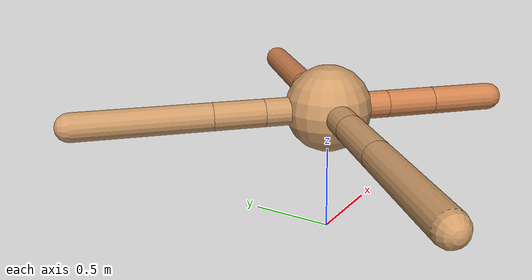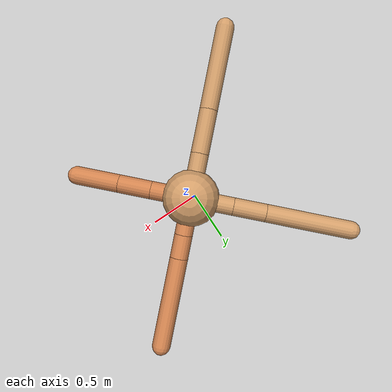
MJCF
<mujoco model="ant">
  <compiler angle="degree" coordinate="local" inertiafromgeom="true" />
  <option integrator="RK4" timestep="0.01" />
  <custom>
    <numeric data="0.0 0.0 0.55 1.0 0.0 0.0 0.0 0.0 1.0 0.0 -1.0 0.0 -1.0 0.0 1.0" name="init_qpos" />
  </custom>
  <default>
    <joint armature="1" damping="1" limited="true" />
    <geom conaffinity="0" condim="3" density="5.0" friction="1.5 0.1 0.1" margin="0.01" rgba="0.8 0.6 0.4 1" />
  </default>
  <worldbody>
    <body name="torso" pos="0 0 0.75">
      <geom name="torso_geom" pos="0 0 0" size="0.25" type="sphere" />

      <body name="front_left_leg" pos="0 0 0">
        <geom fromto="0.0 0.0 0.0 0.23053319323310936 0.23053319323310936 0.0" name="aux_1_geom" size="0.08" type="capsule" rgba=".8 .5 .3 1" />
        <body name="aux_1" pos="0.23053319323310936 0.23053319323310936 0.0">
          <joint axis="0 0 1" name="hip_1" pos="0.0 0.0 0.0" range="-40 40" type="hinge" />
          <geom fromto="0.0 0.0 0.0 0.1454415693287505 0.1454415693287505 0.0" name="left_leg_geom" size="0.08" type="capsule" rgba=".8 .5 .3 1" />
          <body pos="0.1454415693287505 0.1454415693287505 0.0" name="front_left_foot">
            <joint axis="-1 1 0" name="ankle_1" pos="0.0 0.0 0.0" range="30 100" type="hinge" />
            <geom fromto="0.0 0.0 0.0 0.5512493412799632 0.5512493412799632 0.0" name="left_ankle_geom" size="0.08" type="capsule" rgba=".8 .5 .3 1" />
          </body>
        </body>
      </body>
      <body name="front_right_leg" pos="0 0 0">
        <geom fromto="0.0 0.0 0.0 -0.2652681955176659 0.2652681955176659 0.0" name="aux_2_geom" size="0.08" type="capsule" />
        <body name="aux_2" pos="-0.2652681955176659 0.2652681955176659 0.0">
          <joint axis="0 0 1" name="hip_2" pos="0.0 0.0 0.0" range="-40 40" type="hinge" />
          <geom fromto="0.0 0.0 0.0 -0.20404301241218073 0.20404301241218073 0.0" name="right_leg_geom" size="0.08" type="capsule" />
          <body pos="-0.20404301241218073 0.20404301241218073 0.0" name="front_right_foot">
            <joint axis="1 1 0" name="ankle_2" pos="0.0 0.0 0.0" range="-100 -30" type="hinge" />
            <geom fromto="0.0 0.0 0.0 -0.5323848497921029 0.5323848497921029 0.0" name="right_ankle_geom" size="0.08" type="capsule" />
          </body>
        </body>
      </body>
      <body name="left_back_leg" pos="0 0 0">
        <geom fromto="0.0 0.0 0.0 -0.2777158848353712 -0.2777158848353712 0.0" name="aux_3_geom" size="0.08" type="capsule" />
        <body name="aux_3" pos="-0.2777158848353712 -0.2777158848353712 0.0">
          <joint axis="0 0 1" name="hip_3" pos="0.0 0.0 0.0" range="-40 40" type="hinge" />
          <geom fromto="0.0 0.0 0.0 -0.27524053818869626 -0.27524053818869626 0.0" name="back_leg_geom" size="0.08" type="capsule" />
          <body pos="-0.27524053818869626 -0.27524053818869626 0.0" name="left_back_foot">
            <joint axis="-1 1 0" name="ankle_3" pos="0.0 0.0 0.0" range="-100 -30" type="hinge" />
            <geom fromto="0.0 0.0 0.0 -0.5183309125778623 -0.5183309125778623 0.0" name="third_ankle_geom" size="0.08" type="capsule" />
          </body>
        </body>
      </body>
      <body name="right_back_leg" pos="0 0 0">
        <geom fromto="0.0 0.0 0.0 0.249289078373635 -0.249289078373635 0.0" name="aux_4_geom" size="0.08" type="capsule" rgba=".8 .5 .3 1" />
        <body name="aux_4" pos="0.249289078373635 -0.249289078373635 0.0">
          <joint axis="0 0 1" name="hip_4" pos="0.0 0.0 0.0" range="-40 40" type="hinge" />
          <geom fromto="0.0 0.0 0.0 0.2008956856183152 -0.2008956856183152 0.0" name="rightback_leg_geom" size="0.08" type="capsule" rgba=".8 .5 .3 1" />
          <body pos="0.2008956856183152 -0.2008956856183152 0.0" name="right_back_foot">
            <joint axis="1 1 0" name="ankle_4" pos="0.0 0.0 0.0" range="30 100" type="hinge" />
            <geom fromto="0.0 0.0 0.0 0.2614370722227935 -0.2614370722227935 0.0" name="fourth_ankle_geom" size="0.08" type="capsule" rgba=".8 .5 .3 1" />
          </body>
        </body>
      </body>
    </body>
  </worldbody>
  <actuator>
    <motor ctrllimited="true" ctrlrange="-1.0 1.0" joint="hip_4" gear="150" />
    <motor ctrllimited="true" ctrlrange="-1.0 1.0" joint="ankle_4" gear="150" />
    <motor ctrllimited="true" ctrlrange="-1.0 1.0" joint="hip_1" gear="150" />
    <motor ctrllimited="true" ctrlrange="-1.0 1.0" joint="ankle_1" gear="150" />
    <motor ctrllimited="true" ctrlrange="-1.0 1.0" joint="hip_2" gear="150" />
    <motor ctrllimited="true" ctrlrange="-1.0 1.0" joint="ankle_2" gear="150" />
    <motor ctrllimited="true" ctrlrange="-1.0 1.0" joint="hip_3" gear="150" />
    <motor ctrllimited="true" ctrlrange="-1.0 1.0" joint="ankle_3" gear="150" />
  </actuator>
</mujoco>
